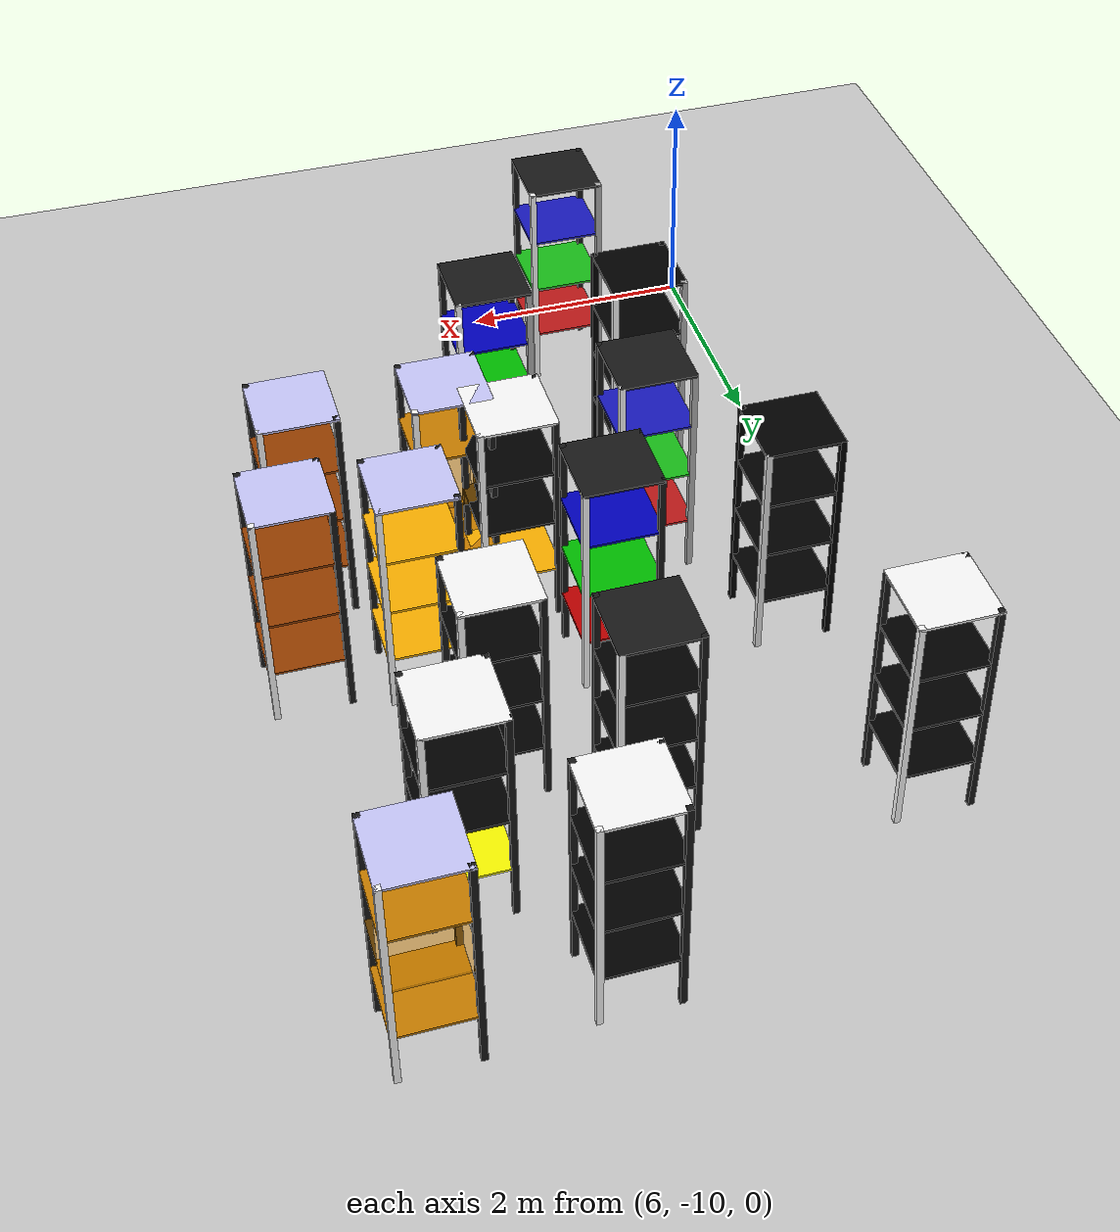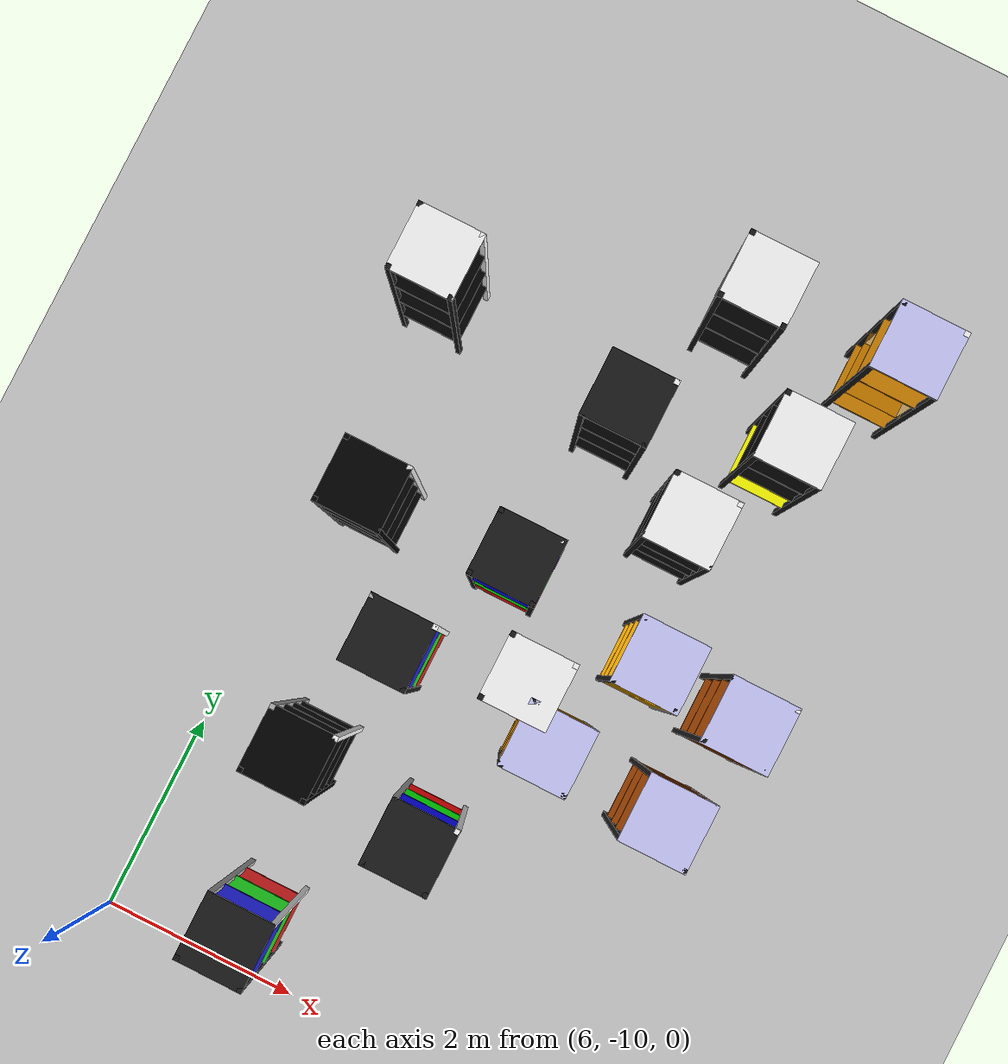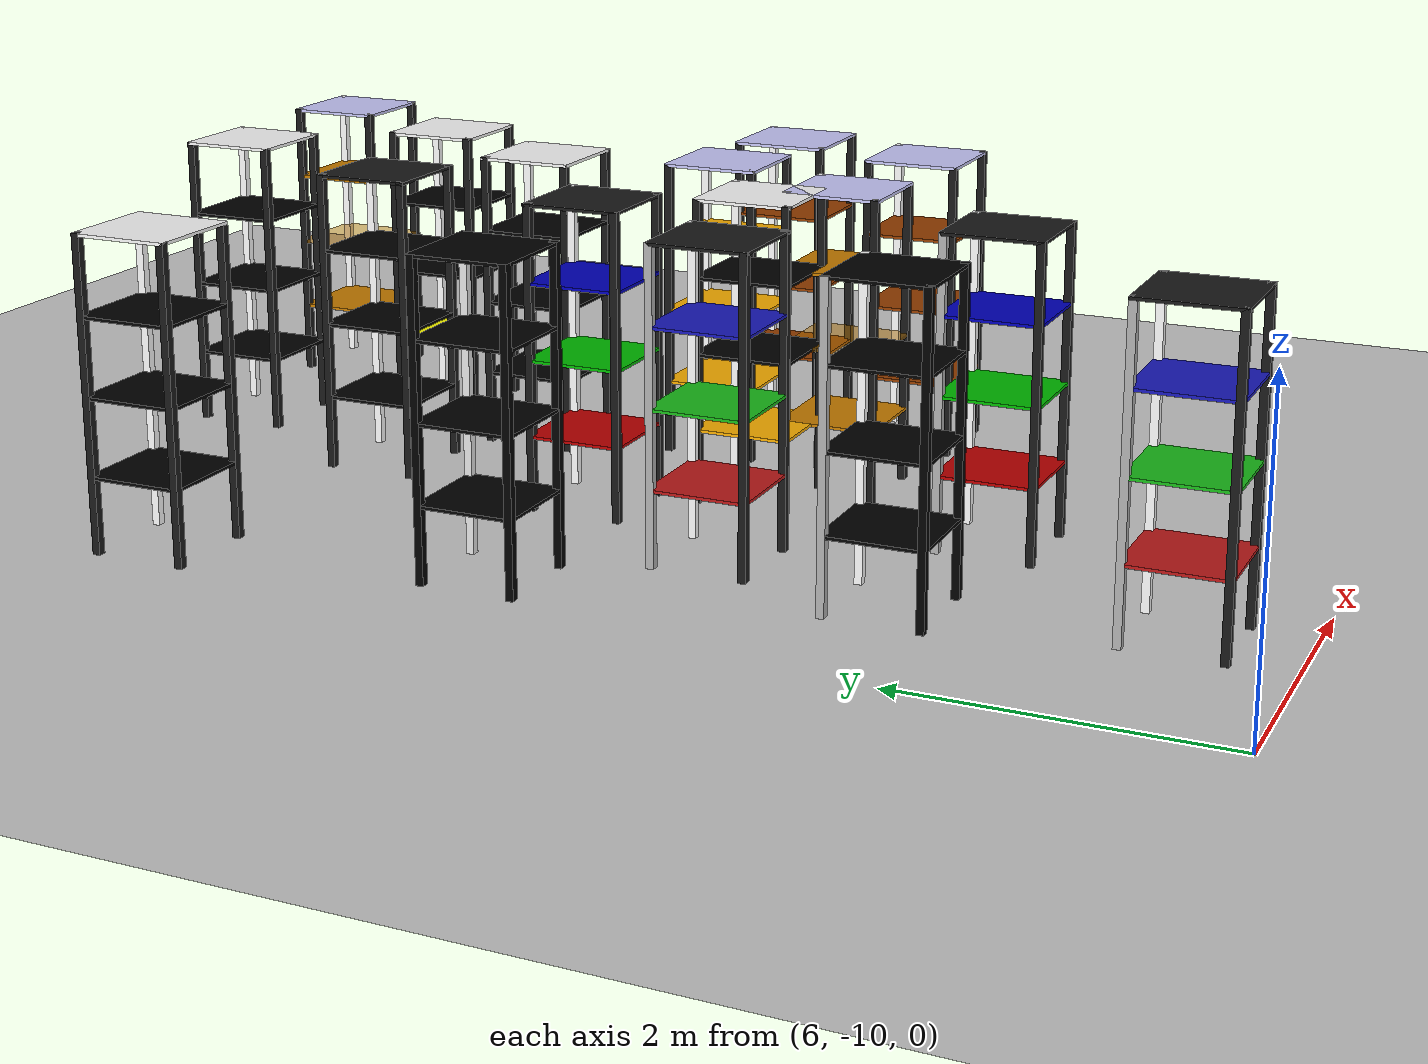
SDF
<sdf version="1.6">
 <world name="default">
  <model name="ground_plane">
   <static>1</static>
   <link name="link">
    <collision name="collision">
     <geometry><plane><normal>0 0 1</normal><size>50 50</size></plane></geometry>
     <surface><friction><ode><mu>100</mu><mu2>50</mu2></ode></friction></surface>
    </collision>
    <visual name="visual">
     <cast_shadows>0</cast_shadows>
     <geometry><plane><normal>0 0 1</normal><size>100 100</size></plane></geometry>
     <material>
      <script><uri>file://media/materials/scripts/gazebo.material</uri><name>Gazebo/Grey</name></script>
     </material>
    </visual>
    <velocity_decay><linear>0</linear><angular>0</angular></velocity_decay>
   </link>
  </model>
  <model name="warehouse_shelf_43">
   <static>1</static>
   <pose>6.62986 -5.31748 0 0 -0 0</pose>
   <link name="main_block">
    <pose>0 0 1.25 0 -0 0</pose>
    <collision name="collision"><geometry><box><size>0.65 0.65 1.5</size></box></geometry></collision>
   </link>
   <link name="leg_1">
    <pose>0.3 0.3 1 0 -0 0</pose>
    <collision name="collision"><geometry><box><size>0.05 0.05 2</size></box></geometry></collision>
    <visual name="visual">
     <geometry><box><size>0.05 0.05 2</size></box></geometry>
     <material><ambient>0.7 0.7 0.7 1</ambient><diffuse>0.9 0.9 0.9 1</diffuse></material>
    </visual>
   </link>
   <link name="leg_2">
    <pose>-0.3 0.3 1 0 -0 0</pose>
    <collision name="collision"><geometry><box><size>0.05 0.05 2</size></box></geometry></collision>
    <visual name="visual">
     <geometry><box><size>0.05 0.05 2</size></box></geometry>
     <material><ambient>0.7 0.7 0.7 1</ambient><diffuse>0 0 0 1</diffuse></material>
    </visual>
   </link>
   <link name="leg_3">
    <pose>-0.3 -0.3 1 0 -0 0</pose>
    <collision name="collision"><geometry><box><size>0.05 0.05 2</size></box></geometry></collision>
    <visual name="visual">
     <geometry><box><size>0.05 0.05 2</size></box></geometry>
     <material><ambient>0.1 0.1 0.1 1</ambient><diffuse>0 0 0 1</diffuse></material>
    </visual>
   </link>
   <link name="leg_4">
    <pose>0.3 -0.3 1 0 -0 0</pose>
    <collision name="collision"><geometry><box><size>0.05 0.05 2</size></box></geometry></collision>
    <visual name="visual">
     <geometry><box><size>0.05 0.05 2</size></box></geometry>
     <material><ambient>0.1 0.1 0.1 1</ambient><diffuse>0 0 0 1</diffuse></material>
    </visual>
   </link>
   <link name="shelf_0">
    <pose>0 0 0.49 0 -0 0</pose>
    <visual name="visual">
     <geometry><box><size>0.649 0.649 0.02</size></box></geometry>
     <material><ambient>0.75 0.1 0.1 1</ambient><diffuse>0 0 0 1</diffuse></material>
    </visual>
   </link>
   <link name="shelf_1">
    <pose>0 0 0.99 0 -0 0</pose>
    <visual name="visual">
     <geometry><box><size>0.649 0.649 0.02</size></box></geometry>
     <material><ambient>0.1 0.75 0.1 1</ambient><diffuse>0 0 0 1</diffuse></material>
    </visual>
   </link>
   <link name="shelf_2">
    <pose>0 0 1.49 0 -0 0</pose>
    <visual name="visual">
     <geometry><box><size>0.649 0.649 0.02</size></box></geometry>
     <material><ambient>0.1 0.1 0.75 1</ambient><diffuse>0 0 0 1</diffuse></material>
    </visual>
   </link>
   <link name="shelf_top">
    <pose>0 0 1.99 0 -0 0</pose>
    <visual name="visual">
     <geometry><box><size>0.649 0.649 0.02</size></box></geometry>
     <material><ambient>0.1 0.1 0.1 1</ambient><diffuse>0 0 0 1</diffuse></material>
    </visual>
   </link>
  </model>
  <model name="warehouse_shelf_44">
   <static>1</static>
   <pose>7.11852 -7.64911 0 0 -0 0</pose>
   <link name="main_block">
    <pose>0 0 1.25 0 -0 0</pose>
    <collision name="collision"><geometry><box><size>0.65 0.65 1.5</size></box></geometry></collision>
   </link>
   <link name="leg_1">
    <pose>0.3 0.3 1 0 -0 0</pose>
    <collision name="collision"><geometry><box><size>0.05 0.05 2</size></box></geometry></collision>
    <visual name="visual">
     <geometry><box><size>0.05 0.05 2</size></box></geometry>
     <material><ambient>0.7 0.7 0.7 1</ambient><diffuse>1 1 1 1</diffuse></material>
    </visual>
   </link>
   <link name="leg_2">
    <pose>-0.3 0.3 1 0 -0 0</pose>
    <collision name="collision"><geometry><box><size>0.05 0.05 2</size></box></geometry></collision>
    <visual name="visual">
     <geometry><box><size>0.05 0.05 2</size></box></geometry>
     <material><ambient>0.7 0.7 0.7 1</ambient></material>
    </visual>
   </link>
   <link name="leg_3">
    <pose>-0.3 -0.3 1 0 -0 0</pose>
    <collision name="collision"><geometry><box><size>0.05 0.05 2</size></box></geometry></collision>
    <visual name="visual">
     <geometry><box><size>0.05 0.05 2</size></box></geometry>
     <material><ambient>0.1 0.1 0.1 1</ambient><diffuse>0 0 0 1</diffuse></material>
    </visual>
   </link>
   <link name="leg_4">
    <pose>0.3 -0.3 1 0 -0 0</pose>
    <collision name="collision"><geometry><box><size>0.05 0.05 2</size></box></geometry></collision>
    <visual name="visual">
     <geometry><box><size>0.05 0.05 2</size></box></geometry>
     <material><ambient>0.1 0.1 0.1 1</ambient><diffuse>0 0 0 1</diffuse></material>
    </visual>
   </link>
   <link name="shelf_0">
    <pose>0 0 0.49 0 -0 0</pose>
    <visual name="visual">
     <geometry><box><size>0.649 0.649 0.02</size></box></geometry>
     <material><ambient>0.75 0.1 0.1 1</ambient><diffuse>0 0 0 1</diffuse></material>
    </visual>
   </link>
   <link name="shelf_1">
    <pose>0 0 0.99 0 -0 0</pose>
    <visual name="visual">
     <geometry><box><size>0.649 0.649 0.02</size></box></geometry>
     <material><ambient>0.1 0.75 0.1 1</ambient><diffuse>0 0 0 1</diffuse></material>
    </visual>
   </link>
   <link name="shelf_2">
    <pose>0 0 1.49 0 -0 0</pose>
    <visual name="visual">
     <geometry><box><size>0.649 0.649 0.02</size></box></geometry>
     <material><ambient>0.1 0.1 0.75 1</ambient><diffuse>0 0 0 1</diffuse></material>
    </visual>
   </link>
   <link name="shelf_top">
    <pose>0 0 1.99 0 -0 0</pose>
    <visual name="visual">
     <geometry><box><size>0.649 0.649 0.02</size></box></geometry>
     <material><ambient>0.1 0.1 0.1 1</ambient><diffuse>0 0 0 1</diffuse></material>
    </visual>
   </link>
  </model>
  <model name="warehouse_shelf_45">
   <static>1</static>
   <pose>7.44363 -6.42414 0 0 -0 0</pose>
   <link name="main_block">
    <pose>0 0 1.25 0 -0 0</pose>
    <collision name="collision"><geometry><box><size>0.65 0.65 1.5</size></box></geometry></collision>
   </link>
   <link name="leg_1">
    <pose>0.3 0.3 1 0 -0 0</pose>
    <collision name="collision"><geometry><box><size>0.05 0.05 2</size></box></geometry></collision>
    <visual name="visual">
     <geometry><box><size>0.05 0.05 2</size></box></geometry>
     <material><ambient>0.7 0.7 0.7 1</ambient><diffuse>1 1 1 1</diffuse></material>
    </visual>
   </link>
   <link name="leg_2">
    <pose>-0.3 0.3 1 0 -0 0</pose>
    <collision name="collision"><geometry><box><size>0.05 0.05 2</size></box></geometry></collision>
    <visual name="visual">
     <geometry><box><size>0.05 0.05 2</size></box></geometry>
     <material><ambient>0.7 0.7 0.7 1</ambient></material>
    </visual>
   </link>
   <link name="leg_3">
    <pose>-0.3 -0.3 1 0 -0 0</pose>
    <collision name="collision"><geometry><box><size>0.05 0.05 2</size></box></geometry></collision>
    <visual name="visual">
     <geometry><box><size>0.05 0.05 2</size></box></geometry>
     <material><ambient>0.1 0.1 0.1 1</ambient></material>
    </visual>
   </link>
   <link name="leg_4">
    <pose>0.3 -0.3 1 0 -0 0</pose>
    <collision name="collision"><geometry><box><size>0.05 0.05 2</size></box></geometry></collision>
    <visual name="visual">
     <geometry><box><size>0.05 0.05 2</size></box></geometry>
     <material><ambient>0.1 0.1 0.1 1</ambient></material>
    </visual>
   </link>
   <link name="shelf_0">
    <pose>0 0 0.49 0 -0 0</pose>
    <visual name="visual">
     <geometry><box><size>0.649 0.649 0.02</size></box></geometry>
     <material><ambient>0.75 0.1 0.1 1</ambient></material>
    </visual>
   </link>
   <link name="shelf_1">
    <pose>0 0 0.99 0 -0 0</pose>
    <visual name="visual">
     <geometry><box><size>0.649 0.649 0.02</size></box></geometry>
     <material><ambient>0.1 0.75 0.1 1</ambient></material>
    </visual>
   </link>
   <link name="shelf_2">
    <pose>0 0 1.49 0 -0 0</pose>
    <visual name="visual">
     <geometry><box><size>0.649 0.649 0.02</size></box></geometry>
     <material><ambient>0.1 0.1 0.75 1</ambient></material>
    </visual>
   </link>
   <link name="shelf_top">
    <pose>0 0 1.99 0 -0 0</pose>
    <visual name="visual">
     <geometry><box><size>0.65 0.65 0.02</size></box></geometry>
     <material><ambient>0.1 0.1 0.1 1</ambient></material>
    </visual>
   </link>
  </model>
  <model name="warehouse_shelf_46">
   <static>1</static>
   <pose>7.36958 -9.30303 0 0 -0 0</pose>
   <link name="main_block">
    <pose>0 0 1.25 0 -0 0</pose>
    <collision name="collision"><geometry><box><size>0.65 0.65 1.5</size></box></geometry></collision>
   </link>
   <link name="leg_1">
    <pose>0.3 0.3 1 0 -0 0</pose>
    <collision name="collision"><geometry><box><size>0.05 0.05 2</size></box></geometry></collision>
    <visual name="visual">
     <geometry><box><size>0.05 0.05 2</size></box></geometry>
     <material><ambient>0.7 0.7 0.7 1</ambient><diffuse>1 1 1 1</diffuse></material>
    </visual>
   </link>
   <link name="leg_2">
    <pose>-0.3 0.3 1 0 -0 0</pose>
    <collision name="collision"><geometry><box><size>0.05 0.05 2</size></box></geometry></collision>
    <visual name="visual">
     <geometry><box><size>0.05 0.05 2</size></box></geometry>
     <material><ambient>0.7 0.7 0.7 1</ambient></material>
    </visual>
   </link>
   <link name="leg_3">
    <pose>-0.3 -0.3 1 0 -0 0</pose>
    <collision name="collision"><geometry><box><size>0.05 0.05 2</size></box></geometry></collision>
    <visual name="visual">
     <geometry><box><size>0.05 0.05 2</size></box></geometry>
     <material><ambient>0.1 0.1 0.1 1</ambient></material>
    </visual>
   </link>
   <link name="leg_4">
    <pose>0.3 -0.3 1 0 -0 0</pose>
    <collision name="collision"><geometry><box><size>0.05 0.05 2</size></box></geometry></collision>
    <visual name="visual">
     <geometry><box><size>0.05 0.05 2</size></box></geometry>
     <material><ambient>0.1 0.1 0.1 1</ambient></material>
    </visual>
   </link>
   <link name="shelf_0">
    <pose>0 0 0.49 0 -0 0</pose>
    <visual name="visual">
     <geometry><box><size>0.649 0.649 0.02</size></box></geometry>
     <material><ambient>0.75 0.1 0.1 1</ambient></material>
    </visual>
   </link>
   <link name="shelf_1">
    <pose>0 0 0.99 0 -0 0</pose>
    <visual name="visual">
     <geometry><box><size>0.649 0.649 0.02</size></box></geometry>
     <material><ambient>0.1 0.75 0.1 1</ambient></material>
    </visual>
   </link>
   <link name="shelf_2">
    <pose>0 0 1.49 0 -0 0</pose>
    <visual name="visual">
     <geometry><box><size>0.649 0.649 0.02</size></box></geometry>
     <material><ambient>0.1 0.1 0.75 1</ambient></material>
    </visual>
   </link>
   <link name="shelf_top">
    <pose>0 0 1.99 0 -0 0</pose>
    <visual name="visual">
     <geometry><box><size>0.65 0.65 0.02</size></box></geometry>
     <material><ambient>0.1 0.1 0.1 1</ambient></material>
    </visual>
   </link>
  </model>
  <model name="warehouse_shelf_47">
   <static>1</static>
   <pose>8.40093 -7.88247 0 0 -0 0</pose>
   <link name="main_block">
    <pose>0 0 1.25 0 -0 0</pose>
    <collision name="collision"><geometry><box><size>0.65 0.65 1.5</size></box></geometry></collision>
   </link>
   <link name="leg_1">
    <pose>0.3 0.3 1 0 -0 0</pose>
    <collision name="collision"><geometry><box><size>0.05 0.05 2</size></box></geometry></collision>
    <visual name="visual">
     <geometry><box><size>0.05 0.05 2</size></box></geometry>
     <material><ambient>0.7 0.7 0.7 1</ambient><diffuse>1 1 1 1</diffuse></material>
    </visual>
   </link>
   <link name="leg_2">
    <pose>-0.3 0.3 1 0 -0 0</pose>
    <collision name="collision"><geometry><box><size>0.05 0.05 2</size></box></geometry></collision>
    <visual name="visual">
     <geometry><box><size>0.05 0.05 2</size></box></geometry>
     <material><ambient>0.7 0.7 0.7 1</ambient></material>
    </visual>
   </link>
   <link name="leg_3">
    <pose>-0.3 -0.3 1 0 -0 0</pose>
    <collision name="collision"><geometry><box><size>0.05 0.05 2</size></box></geometry></collision>
    <visual name="visual">
     <geometry><box><size>0.05 0.05 2</size></box></geometry>
     <material><ambient>0.1 0.1 0.1 1</ambient></material>
    </visual>
   </link>
   <link name="leg_4">
    <pose>0.3 -0.3 1 0 -0 0</pose>
    <collision name="collision"><geometry><box><size>0.05 0.05 2</size></box></geometry></collision>
    <visual name="visual">
     <geometry><box><size>0.05 0.05 2</size></box></geometry>
     <material><ambient>0.1 0.1 0.1 1</ambient></material>
    </visual>
   </link>
   <link name="shelf_0">
    <pose>0 0 0.49 0 -0 0</pose>
    <visual name="visual">
     <geometry><box><size>0.649 0.649 0.02</size></box></geometry>
     <material><ambient>0.75 0 0 1</ambient></material>
    </visual>
   </link>
   <link name="shelf_1">
    <pose>0 0 0.99 0 -0 0</pose>
    <visual name="visual">
     <geometry><box><size>0.649 0.649 0.02</size></box></geometry>
     <material><ambient>0 0.75 0 1</ambient></material>
    </visual>
   </link>
   <link name="shelf_2">
    <pose>0 0 1.49 0 -0 0</pose>
    <visual name="visual">
     <geometry><box><size>0.649 0.649 0.02</size></box></geometry>
     <material><ambient>0 0 0.75 1</ambient></material>
    </visual>
   </link>
   <link name="shelf_top">
    <pose>0 0 1.99 0 -0 0</pose>
    <visual name="visual">
     <geometry><box><size>0.65 0.65 0.02</size></box></geometry>
     <material><ambient>0.1 0.1 0.1 1</ambient></material>
    </visual>
   </link>
  </model>
  <model name="warehouse_shelf_48">
   <static>1</static>
   <pose>8.08907 -5.27615 0 0 -0 0</pose>
   <link name="main_block">
    <pose>0 0 1.25 0 -0 0</pose>
    <collision name="collision"><geometry><box><size>0.65 0.65 1.5</size></box></geometry></collision>
   </link>
   <link name="leg_1">
    <pose>0.3 0.3 1 0 -0 0</pose>
    <collision name="collision"><geometry><box><size>0.05 0.05 2</size></box></geometry></collision>
    <visual name="visual">
     <geometry><box><size>0.05 0.05 2</size></box></geometry>
     <material><ambient>0.1 0.1 0.1 1</ambient><diffuse>1 1 1 1</diffuse></material>
    </visual>
   </link>
   <link name="leg_2">
    <pose>-0.3 0.3 1 0 -0 0</pose>
    <collision name="collision"><geometry><box><size>0.05 0.05 2</size></box></geometry></collision>
    <visual name="visual">
     <geometry><box><size>0.05 0.05 2</size></box></geometry>
     <material><ambient>0.1 0.1 0.1 1</ambient></material>
    </visual>
   </link>
   <link name="leg_3">
    <pose>-0.3 -0.3 1 0 -0 0</pose>
    <collision name="collision"><geometry><box><size>0.05 0.05 2</size></box></geometry></collision>
    <visual name="visual">
     <geometry><box><size>0.05 0.05 2</size></box></geometry>
     <material><ambient>0.1 0.1 0.1 1</ambient></material>
    </visual>
   </link>
   <link name="leg_4">
    <pose>0.3 -0.3 1 0 -0 0</pose>
    <collision name="collision"><geometry><box><size>0.05 0.05 2</size></box></geometry></collision>
    <visual name="visual">
     <geometry><box><size>0.05 0.05 2</size></box></geometry>
     <material><ambient>0.1 0.1 0.1 1</ambient></material>
    </visual>
   </link>
   <link name="shelf_0">
    <pose>0 0 0.49 0 -0 0</pose>
    <visual name="visual">
     <geometry><box><size>0.649 0.649 0.02</size></box></geometry>
     <material><ambient>0.75 0 0 1</ambient></material>
    </visual>
   </link>
   <link name="shelf_1">
    <pose>0 0 0.99 0 -0 0</pose>
    <visual name="visual">
     <geometry><box><size>0.649 0.649 0.02</size></box></geometry>
     <material><ambient>0 0.75 0 1</ambient></material>
    </visual>
   </link>
   <link name="shelf_2">
    <pose>0 0 1.49 0 -0 0</pose>
    <visual name="visual">
     <geometry><box><size>0.649 0.649 0.02</size></box></geometry>
     <material><ambient>0 0 0.75 1</ambient></material>
    </visual>
   </link>
   <link name="shelf_top">
    <pose>0 0 1.99 0 -0 0</pose>
    <visual name="visual">
     <geometry><box><size>0.65 0.65 0.02</size></box></geometry>
     <material><ambient>0.1 0.1 0.1 1</ambient></material>
    </visual>
   </link>
  </model>
  <model name="warehouse_shelf_49">
   <static>1</static>
   <pose>8.32542 -3.6249 0 0 -0 0</pose>
   <link name="main_block">
    <pose>0 0 1.25 0 -0 0</pose>
    <collision name="collision"><geometry><box><size>0.65 0.65 1.5</size></box></geometry></collision>
   </link>
   <link name="leg_1">
    <pose>0.3 0.3 1 0 -0 0</pose>
    <collision name="collision"><geometry><box><size>0.05 0.05 2</size></box></geometry></collision>
    <visual name="visual">
     <geometry><box><size>0.05 0.05 2</size></box></geometry>
     <material><ambient>0.1 0.1 0.1 1</ambient><diffuse>1 1 1 1</diffuse></material>
    </visual>
   </link>
   <link name="leg_2">
    <pose>-0.3 0.3 1 0 -0 0</pose>
    <collision name="collision"><geometry><box><size>0.05 0.05 2</size></box></geometry></collision>
    <visual name="visual">
     <geometry><box><size>0.05 0.05 2</size></box></geometry>
     <material><ambient>0.1 0.1 0.1 1</ambient></material>
    </visual>
   </link>
   <link name="leg_3">
    <pose>-0.3 -0.3 1 0 -0 0</pose>
    <collision name="collision"><geometry><box><size>0.05 0.05 2</size></box></geometry></collision>
    <visual name="visual">
     <geometry><box><size>0.05 0.05 2</size></box></geometry>
     <material><ambient>0.1 0.1 0.1 1</ambient></material>
    </visual>
   </link>
   <link name="leg_4">
    <pose>0.3 -0.3 1 0 -0 0</pose>
    <collision name="collision"><geometry><box><size>0.05 0.05 2</size></box></geometry></collision>
    <visual name="visual">
     <geometry><box><size>0.05 0.05 2</size></box></geometry>
     <material><ambient>0.1 0.1 0.1 1</ambient></material>
    </visual>
   </link>
   <link name="shelf_0">
    <pose>0 0 0.49 0 -0 0</pose>
    <visual name="visual">
     <geometry><box><size>0.649 0.649 0.02</size></box></geometry>
     <material><ambient>0 0 0 1</ambient><diffuse>0 0 0 1</diffuse><emissive>0 1 0 1</emissive></material>
    </visual>
   </link>
   <link name="shelf_1">
    <pose>0 0 0.99 0 -0 0</pose>
    <visual name="visual">
     <geometry><box><size>0.649 0.649 0.02</size></box></geometry>
     <material><ambient>0 0 0 1</ambient><diffuse>0 0 0 1</diffuse><emissive>0 1 0 1</emissive></material>
    </visual>
   </link>
   <link name="shelf_2">
    <pose>0 0 1.49 0 -0 0</pose>
    <visual name="visual">
     <geometry><box><size>0.649 0.649 0.02</size></box></geometry>
     <material><ambient>0 0 0 1</ambient><diffuse>0 0 0 1</diffuse><emissive>0 1 0 1</emissive></material>
    </visual>
   </link>
   <link name="shelf_top">
    <pose>0 0 1.99 0 -0 0</pose>
    <visual name="visual">
     <geometry><box><size>0.65 0.65 0.02</size></box></geometry>
     <material><ambient>0.1 0.1 0.1 1</ambient></material>
    </visual>
   </link>
  </model>
  <model name="warehouse_shelf_50">
   <static>1</static>
   <pose>9.28059 -4.31278 0 0 -0 0</pose>
   <link name="main_block">
    <pose>0 0 1.25 0 -0 0</pose>
    <collision name="collision"><geometry><box><size>0.65 0.65 1.5</size></box></geometry></collision>
   </link>
   <link name="leg_1">
    <pose>0.3 0.3 1 0 -0 0</pose>
    <collision name="collision"><geometry><box><size>0.05 0.05 2</size></box></geometry></collision>
    <visual name="visual">
     <geometry><box><size>0.05 0.05 2</size></box></geometry>
     <material><ambient>0.1 0.1 0.1 1</ambient><diffuse>1 1 1 1</diffuse></material>
    </visual>
   </link>
   <link name="leg_2">
    <pose>-0.3 0.3 1 0 -0 0</pose>
    <collision name="collision"><geometry><box><size>0.05 0.05 2</size></box></geometry></collision>
    <visual name="visual">
     <geometry><box><size>0.05 0.05 2</size></box></geometry>
     <material><ambient>0.1 0.1 0.1 1</ambient></material>
    </visual>
   </link>
   <link name="leg_3">
    <pose>-0.3 -0.3 1 0 -0 0</pose>
    <collision name="collision"><geometry><box><size>0.05 0.05 2</size></box></geometry></collision>
    <visual name="visual">
     <geometry><box><size>0.05 0.05 2</size></box></geometry>
     <material><ambient>0.1 0.1 0.1 1</ambient></material>
    </visual>
   </link>
   <link name="leg_4">
    <pose>0.3 -0.3 1 0 -0 0</pose>
    <collision name="collision"><geometry><box><size>0.05 0.05 2</size></box></geometry></collision>
    <visual name="visual">
     <geometry><box><size>0.05 0.05 2</size></box></geometry>
     <material><ambient>0.1 0.1 0.1 1</ambient></material>
    </visual>
   </link>
   <link name="shelf_0">
    <pose>0 0 0.49 0 -0 0</pose>
    <visual name="visual">
     <geometry><box><size>0.649 0.649 0.02</size></box></geometry>
     <material><ambient>0 0 0 1</ambient><diffuse>0 0 0 1</diffuse><emissive>0 1 0 1</emissive></material>
    </visual>
   </link>
   <link name="shelf_1">
    <pose>0 0 0.99 0 -0 0</pose>
    <visual name="visual">
     <geometry><box><size>0.649 0.649 0.02</size></box></geometry>
     <material><ambient>0 0 0 1</ambient><diffuse>0 0 0 1</diffuse><emissive>0 1 0 1</emissive></material>
    </visual>
   </link>
   <link name="shelf_2">
    <pose>0 0 1.49 0 -0 0</pose>
    <visual name="visual">
     <geometry><box><size>0.649 0.649 0.02</size></box></geometry>
     <material><ambient>0 0 0 1</ambient><diffuse>0 0 0 1</diffuse><emissive>0 1 0 1</emissive></material>
    </visual>
   </link>
   <link name="shelf_top">
    <pose>0 0 1.99 0 -0 0</pose>
    <visual name="visual">
     <geometry><box><size>0.65 0.65 0.02</size></box></geometry>
     <material><ambient>0.5 0.5 0.5 1</ambient><diffuse>1 1 1 1</diffuse><emissive>0 0 0 1</emissive></material>
    </visual>
   </link>
  </model>
  <model name="warehouse_shelf_51">
   <static>1</static>
   <pose>8.91973 -2.18442 0 0 -0 0</pose>
   <link name="main_block">
    <pose>0 0 1.25 0 -0 0</pose>
    <collision name="collision"><geometry><box><size>0.65 0.65 1.5</size></box></geometry></collision>
   </link>
   <link name="leg_1">
    <pose>0.3 0.3 1 0 -0 0</pose>
    <collision name="collision"><geometry><box><size>0.05 0.05 2</size></box></geometry></collision>
    <visual name="visual">
     <geometry><box><size>0.05 0.05 2</size></box></geometry>
     <material><ambient>0.1 0.1 0.1 1</ambient><diffuse>1 1 1 1</diffuse></material>
    </visual>
   </link>
   <link name="leg_2">
    <pose>-0.3 0.3 1 0 -0 0</pose>
    <collision name="collision"><geometry><box><size>0.05 0.05 2</size></box></geometry></collision>
    <visual name="visual">
     <geometry><box><size>0.05 0.05 2</size></box></geometry>
     <material><ambient>0.1 0.1 0.1 1</ambient></material>
    </visual>
   </link>
   <link name="leg_3">
    <pose>-0.3 -0.3 1 0 -0 0</pose>
    <collision name="collision"><geometry><box><size>0.05 0.05 2</size></box></geometry></collision>
    <visual name="visual">
     <geometry><box><size>0.05 0.05 2</size></box></geometry>
     <material><ambient>0.1 0.1 0.1 1</ambient></material>
    </visual>
   </link>
   <link name="leg_4">
    <pose>0.3 -0.3 1 0 -0 0</pose>
    <collision name="collision"><geometry><box><size>0.05 0.05 2</size></box></geometry></collision>
    <visual name="visual">
     <geometry><box><size>0.05 0.05 2</size></box></geometry>
     <material><ambient>0.1 0.1 0.1 1</ambient></material>
    </visual>
   </link>
   <link name="shelf_0">
    <pose>0 0 0.49 0 -0 0</pose>
    <visual name="visual">
     <geometry><box><size>0.649 0.649 0.02</size></box></geometry>
     <material><ambient>0 0 0 1</ambient><diffuse>0 0 0 1</diffuse></material>
    </visual>
   </link>
   <link name="shelf_1">
    <pose>0 0 0.99 0 -0 0</pose>
    <visual name="visual">
     <geometry><box><size>0.649 0.649 0.02</size></box></geometry>
     <material><ambient>0 0 0 1</ambient><diffuse>0 0 0 1</diffuse></material>
    </visual>
   </link>
   <link name="shelf_2">
    <pose>0 0 1.49 0 -0 0</pose>
    <visual name="visual">
     <geometry><box><size>0.649 0.649 0.02</size></box></geometry>
     <material><ambient>0 0 0 1</ambient><diffuse>0 0 0 1</diffuse></material>
    </visual>
   </link>
   <link name="shelf_top">
    <pose>0 0 1.99 0 -0 0</pose>
    <visual name="visual">
     <geometry><box><size>0.65 0.65 0.02</size></box></geometry>
     <material><ambient>0.5 0.5 0.5 1</ambient><diffuse>1 1 1 1</diffuse></material>
    </visual>
   </link>
  </model>
  <model name="warehouse_shelf_52">
   <static>1</static>
   <pose>6.27688 -3.25874 0 0 -0 0</pose>
   <link name="main_block">
    <pose>0 0 1.25 0 -0 0</pose>
    <collision name="collision"><geometry><box><size>0.65 0.65 1.5</size></box></geometry></collision>
   </link>
   <link name="leg_1">
    <pose>0.3 0.3 1 0 -0 0</pose>
    <collision name="collision"><geometry><box><size>0.05 0.05 2</size></box></geometry></collision>
    <visual name="visual">
     <geometry><box><size>0.05 0.05 2</size></box></geometry>
     <material><ambient>0.1 0.1 0.1 1</ambient><diffuse>1 1 1 1</diffuse></material>
    </visual>
   </link>
   <link name="leg_2">
    <pose>-0.3 0.3 1 0 -0 0</pose>
    <collision name="collision"><geometry><box><size>0.05 0.05 2</size></box></geometry></collision>
    <visual name="visual">
     <geometry><box><size>0.05 0.05 2</size></box></geometry>
     <material><ambient>0.1 0.1 0.1 1</ambient></material>
    </visual>
   </link>
   <link name="leg_3">
    <pose>-0.3 -0.3 1 0 -0 0</pose>
    <collision name="collision"><geometry><box><size>0.05 0.05 2</size></box></geometry></collision>
    <visual name="visual">
     <geometry><box><size>0.05 0.05 2</size></box></geometry>
     <material><ambient>0.1 0.1 0.1 1</ambient></material>
    </visual>
   </link>
   <link name="leg_4">
    <pose>0.3 -0.3 1 0 -0 0</pose>
    <collision name="collision"><geometry><box><size>0.05 0.05 2</size></box></geometry></collision>
    <visual name="visual">
     <geometry><box><size>0.05 0.05 2</size></box></geometry>
     <material><ambient>0.1 0.1 0.1 1</ambient></material>
    </visual>
   </link>
   <link name="shelf_0">
    <pose>0 0 0.49 0 -0 0</pose>
    <visual name="visual">
     <geometry><box><size>0.649 0.649 0.02</size></box></geometry>
     <material><ambient>0 0 0 1</ambient><diffuse>0 0 0 1</diffuse></material>
    </visual>
   </link>
   <link name="shelf_1">
    <pose>0 0 0.99 0 -0 0</pose>
    <visual name="visual">
     <geometry><box><size>0.649 0.649 0.02</size></box></geometry>
     <material><ambient>0 0 0 1</ambient><diffuse>0 0 0 1</diffuse></material>
    </visual>
   </link>
   <link name="shelf_2">
    <pose>0 0 1.49 0 -0 0</pose>
    <visual name="visual">
     <geometry><box><size>0.649 0.649 0.02</size></box></geometry>
     <material><ambient>0 0 0 1</ambient><diffuse>0 0 0 1</diffuse></material>
    </visual>
   </link>
   <link name="shelf_top">
    <pose>0 0 1.99 0 -0 0</pose>
    <visual name="visual">
     <geometry><box><size>0.65 0.65 0.02</size></box></geometry>
     <material><ambient>0.5 0.5 0.5 1</ambient><diffuse>1 1 1 1</diffuse></material>
    </visual>
   </link>
  </model>
  <model name="warehouse_shelf_53">
   <static>1</static>
   <pose>9.81302 -3.26866 0 0 -0 0</pose>
   <link name="main_block">
    <pose>0 0 1.25 0 -0 0</pose>
    <collision name="collision"><geometry><box><size>0.65 0.65 1.5</size></box></geometry></collision>
   </link>
   <link name="leg_1">
    <pose>0.3 0.3 1 0 -0 0</pose>
    <collision name="collision"><geometry><box><size>0.05 0.05 2</size></box></geometry></collision>
    <visual name="visual">
     <geometry><box><size>0.05 0.05 2</size></box></geometry>
     <material><ambient>0.1 0.1 0.1 1</ambient><diffuse>1 1 1 1</diffuse></material>
    </visual>
   </link>
   <link name="leg_2">
    <pose>-0.3 0.3 1 0 -0 0</pose>
    <collision name="collision"><geometry><box><size>0.05 0.05 2</size></box></geometry></collision>
    <visual name="visual">
     <geometry><box><size>0.05 0.05 2</size></box></geometry>
     <material><ambient>0.1 0.1 0.1 1</ambient></material>
    </visual>
   </link>
   <link name="leg_3">
    <pose>-0.3 -0.3 1 0 -0 0</pose>
    <collision name="collision"><geometry><box><size>0.05 0.05 2</size></box></geometry></collision>
    <visual name="visual">
     <geometry><box><size>0.05 0.05 2</size></box></geometry>
     <material><ambient>0.1 0.1 0.1 1</ambient></material>
    </visual>
   </link>
   <link name="leg_4">
    <pose>0.3 -0.3 1 0 -0 0</pose>
    <collision name="collision"><geometry><box><size>0.05 0.05 2</size></box></geometry></collision>
    <visual name="visual">
     <geometry><box><size>0.05 0.05 2</size></box></geometry>
     <material><ambient>0.1 0.1 0.1 1</ambient></material>
    </visual>
   </link>
   <link name="shelf_0">
    <pose>0 0 0.49 0 -0 0</pose>
    <visual name="visual">
     <geometry><box><size>0.649 0.649 0.02</size></box></geometry>
     <material><ambient>1 1 0 1</ambient><diffuse>1 1 0 1</diffuse></material>
    </visual>
   </link>
   <link name="shelf_1">
    <pose>0 0 0.99 0 -0 0</pose>
    <visual name="visual">
     <geometry><box><size>0.649 0.649 0.02</size></box></geometry>
     <material><ambient>0 0 0 1</ambient><diffuse>0 0 0 1</diffuse></material>
    </visual>
   </link>
   <link name="shelf_2">
    <pose>0 0 1.49 0 -0 0</pose>
    <visual name="visual">
     <geometry><box><size>0.649 0.649 0.02</size></box></geometry>
     <material><ambient>0 0 0 1</ambient><diffuse>0 0 0 1</diffuse></material>
    </visual>
   </link>
   <link name="shelf_top">
    <pose>0 0 1.99 0 -0 0</pose>
    <visual name="visual">
     <geometry><box><size>0.65 0.65 0.02</size></box></geometry>
     <material><ambient>0.5 0.5 0.5 1</ambient><diffuse>1 1 1 1</diffuse></material>
    </visual>
   </link>
  </model>
  <model name="warehouse_shelf_54">
   <static>1</static>
   <pose>8.65731 -6.17429 0 0 -0 0</pose>
   <link name="main_block">
    <pose>0 0 1.25 0 -0 0</pose>
    <collision name="collision"><geometry><box><size>0.65 0.65 1.5</size></box></geometry></collision>
   </link>
   <link name="leg_1">
    <pose>0.3 0.3 1 0 -0 0</pose>
    <collision name="collision"><geometry><box><size>0.05 0.05 2</size></box></geometry></collision>
    <visual name="visual">
     <geometry><box><size>0.05 0.05 2</size></box></geometry>
     <material><ambient>0.1 0.1 0.1 1</ambient><diffuse>1 1 1 1</diffuse></material>
    </visual>
   </link>
   <link name="leg_2">
    <pose>-0.3 0.3 1 0 -0 0</pose>
    <collision name="collision"><geometry><box><size>0.05 0.05 2</size></box></geometry></collision>
    <visual name="visual">
     <geometry><box><size>0.05 0.05 2</size></box></geometry>
     <material><ambient>0.1 0.1 0.1 1</ambient></material>
    </visual>
   </link>
   <link name="leg_3">
    <pose>-0.3 -0.3 1 0 -0 0</pose>
    <collision name="collision"><geometry><box><size>0.05 0.05 2</size></box></geometry></collision>
    <visual name="visual">
     <geometry><box><size>0.05 0.05 2</size></box></geometry>
     <material><ambient>0.1 0.1 0.1 1</ambient></material>
    </visual>
   </link>
   <link name="leg_4">
    <pose>0.3 -0.3 1 0 -0 0</pose>
    <collision name="collision"><geometry><box><size>0.05 0.05 2</size></box></geometry></collision>
    <visual name="visual">
     <geometry><box><size>0.05 0.05 2</size></box></geometry>
     <material><ambient>0.1 0.1 0.1 1</ambient></material>
    </visual>
   </link>
   <link name="shelf_0">
    <pose>0 0 0.49 0 -0 0</pose>
    <visual name="visual">
     <geometry><box><size>0.649 0.649 0.02</size></box></geometry>
     <material><ambient>1 0.7 0 1</ambient><diffuse>1 0.7 0 1</diffuse></material>
    </visual>
   </link>
   <link name="shelf_1">
    <pose>0 0 0.99 0 -0 0</pose>
    <visual name="visual">
     <geometry><box><size>0.649 0.649 0.02</size></box></geometry>
     <material><ambient>0 0 0 1</ambient><diffuse>0 0 0 1</diffuse></material>
    </visual>
   </link>
   <link name="shelf_2">
    <pose>0 0 1.49 0 -0 0</pose>
    <visual name="visual">
     <geometry><box><size>0.649 0.649 0.02</size></box></geometry>
     <material><ambient>0 0 0 1</ambient><diffuse>0 0 0 1</diffuse></material>
    </visual>
   </link>
   <link name="shelf_top">
    <pose>0 0 1.99 0 -0 0</pose>
    <visual name="visual">
     <geometry><box><size>0.65 0.65 0.02</size></box></geometry>
     <material><ambient>0.5 0.5 0.5 1</ambient><diffuse>1 1 1 1</diffuse></material>
    </visual>
   </link>
  </model>
  <model name="warehouse_shelf_55">
   <static>1</static>
   <pose>9.591 -5.53617 0 0 -0 0</pose>
   <link name="main_block">
    <pose>0 0 1.25 0 -0 0</pose>
    <collision name="collision"><geometry><box><size>0.65 0.65 1.5</size></box></geometry></collision>
   </link>
   <link name="leg_1">
    <pose>0.3 0.3 1 0 -0 0</pose>
    <collision name="collision"><geometry><box><size>0.05 0.05 2</size></box></geometry></collision>
    <visual name="visual">
     <geometry><box><size>0.05 0.05 2</size></box></geometry>
     <material><ambient>0.1 0.1 0.1 1</ambient><diffuse>1 1 1 1</diffuse></material>
    </visual>
   </link>
   <link name="leg_2">
    <pose>-0.3 0.3 1 0 -0 0</pose>
    <collision name="collision"><geometry><box><size>0.05 0.05 2</size></box></geometry></collision>
    <visual name="visual">
     <geometry><box><size>0.05 0.05 2</size></box></geometry>
     <material><ambient>0.1 0.1 0.1 1</ambient></material>
    </visual>
   </link>
   <link name="leg_3">
    <pose>-0.3 -0.3 1 0 -0 0</pose>
    <collision name="collision"><geometry><box><size>0.05 0.05 2</size></box></geometry></collision>
    <visual name="visual">
     <geometry><box><size>0.05 0.05 2</size></box></geometry>
     <material><ambient>0.1 0.1 0.1 1</ambient></material>
    </visual>
   </link>
   <link name="leg_4">
    <pose>0.3 -0.3 1 0 -0 0</pose>
    <collision name="collision"><geometry><box><size>0.05 0.05 2</size></box></geometry></collision>
    <visual name="visual">
     <geometry><box><size>0.05 0.05 2</size></box></geometry>
     <material><ambient>0.1 0.1 0.1 1</ambient></material>
    </visual>
   </link>
   <link name="shelf_0">
    <pose>0 0 0.49 0 -0 0</pose>
    <visual name="visual">
     <geometry><box><size>0.649 0.649 0.02</size></box></geometry>
     <material><ambient>1 0.7 0 1</ambient><diffuse>1 0.7 0 1</diffuse></material>
    </visual>
   </link>
   <link name="shelf_1">
    <pose>0 0 0.99 0 -0 0</pose>
    <visual name="visual">
     <geometry><box><size>0.649 0.649 0.02</size></box></geometry>
     <material><ambient>1 0.7 0 1</ambient><diffuse>1 0.7 0 1</diffuse></material>
    </visual>
   </link>
   <link name="shelf_2">
    <pose>0 0 1.49 0 -0 0</pose>
    <visual name="visual">
     <geometry><box><size>0.649 0.649 0.02</size></box></geometry>
     <material><ambient>1 0.7 0 1</ambient><diffuse>1 0.7 0 1</diffuse></material>
    </visual>
   </link>
   <link name="shelf_top">
    <pose>0 0 1.99 0 -0 0</pose>
    <visual name="visual">
     <geometry><box><size>0.65 0.65 0.02</size></box></geometry>
     <material><ambient>0.8 0.8 1 1</ambient><diffuse>0.8 0.8 1 1</diffuse></material>
    </visual>
   </link>
  </model>
  <model name="warehouse_shelf_57">
   <static>1</static>
   <pose>9.06466 -6.60433 0 0 -0 0</pose>
   <link name="main_block">
    <pose>0 0 1.25 0 -0 0</pose>
    <collision name="collision"><geometry><box><size>0.65 0.65 1.5</size></box></geometry></collision>
   </link>
   <link name="leg_1">
    <pose>0.3 0.3 1 0 -0 0</pose>
    <collision name="collision"><geometry><box><size>0.05 0.05 2</size></box></geometry></collision>
    <visual name="visual">
     <geometry><box><size>0.05 0.05 2</size></box></geometry>
     <material><ambient>0.1 0.1 0.1 1</ambient><diffuse>1 1 1 1</diffuse></material>
    </visual>
   </link>
   <link name="leg_2">
    <pose>-0.3 0.3 1 0 -0 0</pose>
    <collision name="collision"><geometry><box><size>0.05 0.05 2</size></box></geometry></collision>
    <visual name="visual">
     <geometry><box><size>0.05 0.05 2</size></box></geometry>
     <material><ambient>0.1 0.1 0.1 1</ambient></material>
    </visual>
   </link>
   <link name="leg_3">
    <pose>-0.3 -0.3 1 0 -0 0</pose>
    <collision name="collision"><geometry><box><size>0.05 0.05 2</size></box></geometry></collision>
    <visual name="visual">
     <geometry><box><size>0.05 0.05 2</size></box></geometry>
     <material><ambient>0.1 0.1 0.1 1</ambient></material>
    </visual>
   </link>
   <link name="leg_4">
    <pose>0.3 -0.3 1 0 -0 0</pose>
    <collision name="collision"><geometry><box><size>0.05 0.05 2</size></box></geometry></collision>
    <visual name="visual">
     <geometry><box><size>0.05 0.05 2</size></box></geometry>
     <material><ambient>0.1 0.1 0.1 1</ambient></material>
    </visual>
   </link>
   <link name="shelf_0">
    <pose>0 0 0.49 0 -0 0</pose>
    <visual name="visual">
     <geometry><box><size>0.649 0.649 0.02</size></box></geometry>
     <material><ambient>0.8 0.5 0 1</ambient><diffuse>0.8 0.5 0 1</diffuse></material>
    </visual>
   </link>
   <link name="shelf_1">
    <pose>0 0 0.99 0 -0 0</pose>
    <visual name="visual">
     <geometry><box><size>0.649 0.649 0.02</size></box></geometry>
     <material><ambient>0.8 0.5 0 0.5</ambient><diffuse>0.8 0.5 0 0.5</diffuse></material>
    </visual>
   </link>
   <link name="shelf_2">
    <pose>0 0 1.49 0 -0 0</pose>
    <visual name="visual">
     <geometry><box><size>0.649 0.649 0.02</size></box></geometry>
     <material><ambient>0.8 0.5 0 1</ambient><diffuse>0.8 0.5 0 1</diffuse></material>
    </visual>
   </link>
   <link name="shelf_top">
    <pose>0 0 1.99 0 -0 0</pose>
    <visual name="visual">
     <geometry><box><size>0.65 0.65 0.02</size></box></geometry>
     <material><ambient>0.8 0.8 1 1</ambient><diffuse>0.8 0.8 1 1</diffuse></material>
    </visual>
   </link>
  </model>
  <model name="warehouse_shelf_58">
   <static>1</static>
   <pose>10.3451 -2.13338 0 0 -0 0</pose>
   <link name="main_block">
    <pose>0 0 1.25 0 -0 0</pose>
    <collision name="collision"><geometry><box><size>0.65 0.65 1.5</size></box></geometry></collision>
   </link>
   <link name="leg_1">
    <pose>0.3 0.3 1 0 -0 0</pose>
    <collision name="collision"><geometry><box><size>0.05 0.05 2</size></box></geometry></collision>
    <visual name="visual">
     <geometry><box><size>0.05 0.05 2</size></box></geometry>
     <material><ambient>0.1 0.1 0.1 1</ambient><diffuse>1 1 1 1</diffuse></material>
    </visual>
   </link>
   <link name="leg_2">
    <pose>-0.3 0.3 1 0 -0 0</pose>
    <collision name="collision"><geometry><box><size>0.05 0.05 2</size></box></geometry></collision>
    <visual name="visual">
     <geometry><box><size>0.05 0.05 2</size></box></geometry>
     <material><ambient>0.1 0.1 0.1 1</ambient></material>
    </visual>
   </link>
   <link name="leg_3">
    <pose>-0.3 -0.3 1 0 -0 0</pose>
    <collision name="collision"><geometry><box><size>0.05 0.05 2</size></box></geometry></collision>
    <visual name="visual">
     <geometry><box><size>0.05 0.05 2</size></box></geometry>
     <material><ambient>0.1 0.1 0.1 1</ambient></material>
    </visual>
   </link>
   <link name="leg_4">
    <pose>0.3 -0.3 1 0 -0 0</pose>
    <collision name="collision"><geometry><box><size>0.05 0.05 2</size></box></geometry></collision>
    <visual name="visual">
     <geometry><box><size>0.05 0.05 2</size></box></geometry>
     <material><ambient>0.1 0.1 0.1 1</ambient></material>
    </visual>
   </link>
   <link name="shelf_0">
    <pose>0 0 0.49 0 -0 0</pose>
    <visual name="visual">
     <geometry><box><size>0.649 0.649 0.02</size></box></geometry>
     <material><ambient>0.8 0.5 0 1</ambient><diffuse>0.8 0.5 0 1</diffuse></material>
    </visual>
   </link>
   <link name="shelf_1">
    <pose>0 0 0.99 0 -0 0</pose>
    <visual name="visual">
     <geometry><box><size>0.649 0.649 0.02</size></box></geometry>
     <material><ambient>0.8 0.5 0 0.5</ambient><diffuse>0.8 0.5 0 0.5</diffuse></material>
    </visual>
   </link>
   <link name="shelf_2">
    <pose>0 0 1.49 0 -0 0</pose>
    <visual name="visual">
     <geometry><box><size>0.649 0.649 0.02</size></box></geometry>
     <material><ambient>0.8 0.5 0 1</ambient><diffuse>0.8 0.5 0 1</diffuse></material>
    </visual>
   </link>
   <link name="shelf_top">
    <pose>0 0 1.99 0 -0 0</pose>
    <visual name="visual">
     <geometry><box><size>0.65 0.65 0.02</size></box></geometry>
     <material><ambient>0.8 0.8 1 1</ambient><diffuse>0.8 0.8 1 1</diffuse></material>
    </visual>
   </link>
  </model>
  <model name="warehouse_shelf_59">
   <static>1</static>
   <pose>10.2585 -6.70435 0 0 -0 0</pose>
   <link name="main_block">
    <pose>0 0 1.25 0 -0 0</pose>
    <collision name="collision"><geometry><box><size>0.65 0.65 1.5</size></box></geometry></collision>
   </link>
   <link name="leg_1">
    <pose>0.3 0.3 1 0 -0 0</pose>
    <collision name="collision"><geometry><box><size>0.05 0.05 2</size></box></geometry></collision>
    <visual name="visual">
     <geometry><box><size>0.05 0.05 2</size></box></geometry>
     <material><ambient>0.1 0.1 0.1 1</ambient><diffuse>1 1 1 1</diffuse></material>
    </visual>
   </link>
   <link name="leg_2">
    <pose>-0.3 0.3 1 0 -0 0</pose>
    <collision name="collision"><geometry><box><size>0.05 0.05 2</size></box></geometry></collision>
    <visual name="visual">
     <geometry><box><size>0.05 0.05 2</size></box></geometry>
     <material><ambient>0.1 0.1 0.1 1</ambient></material>
    </visual>
   </link>
   <link name="leg_3">
    <pose>-0.3 -0.3 1 0 -0 0</pose>
    <collision name="collision"><geometry><box><size>0.05 0.05 2</size></box></geometry></collision>
    <visual name="visual">
     <geometry><box><size>0.05 0.05 2</size></box></geometry>
     <material><ambient>0.1 0.1 0.1 1</ambient></material>
    </visual>
   </link>
   <link name="leg_4">
    <pose>0.3 -0.3 1 0 -0 0</pose>
    <collision name="collision"><geometry><box><size>0.05 0.05 2</size></box></geometry></collision>
    <visual name="visual">
     <geometry><box><size>0.05 0.05 2</size></box></geometry>
     <material><ambient>0.1 0.1 0.1 1</ambient></material>
    </visual>
   </link>
   <link name="shelf_0">
    <pose>0 0 0.49 0 -0 0</pose>
    <visual name="visual">
     <geometry><box><size>0.649 0.649 0.02</size></box></geometry>
     <material><ambient>0.6 0.25 0 1</ambient><diffuse>0.6 0.25 0 1</diffuse></material>
    </visual>
   </link>
   <link name="shelf_1">
    <pose>0 0 0.99 0 -0 0</pose>
    <visual name="visual">
     <geometry><box><size>0.649 0.649 0.02</size></box></geometry>
     <material><ambient>0.6 0.25 0 1</ambient><diffuse>0.6 0.25 0 1</diffuse></material>
    </visual>
   </link>
   <link name="shelf_2">
    <pose>0 0 1.49 0 -0 0</pose>
    <visual name="visual">
     <geometry><box><size>0.649 0.649 0.02</size></box></geometry>
     <material><ambient>0.6 0.25 0 1</ambient><diffuse>0.6 0.25 0 1</diffuse></material>
    </visual>
   </link>
   <link name="shelf_top">
    <pose>0 0 1.99 0 -0 0</pose>
    <visual name="visual">
     <geometry><box><size>0.65 0.65 0.02</size></box></geometry>
     <material><ambient>0.8 0.8 1 1</ambient><diffuse>0.8 0.8 1 1</diffuse></material>
    </visual>
   </link>
  </model>
  <model name="warehouse_shelf_60">
   <static>1</static>
   <pose>10.506 -5.65091 0 0 -0 0</pose>
   <link name="main_block">
    <pose>0 0 1.25 0 -0 0</pose>
    <collision name="collision"><geometry><box><size>0.65 0.65 1.5</size></box></geometry></collision>
   </link>
   <link name="leg_1">
    <pose>0.3 0.3 1 0 -0 0</pose>
    <collision name="collision"><geometry><box><size>0.05 0.05 2</size></box></geometry></collision>
    <visual name="visual">
     <geometry><box><size>0.05 0.05 2</size></box></geometry>
     <material><ambient>0.1 0.1 0.1 1</ambient><diffuse>1 1 1 1</diffuse></material>
    </visual>
   </link>
   <link name="leg_2">
    <pose>-0.3 0.3 1 0 -0 0</pose>
    <collision name="collision"><geometry><box><size>0.05 0.05 2</size></box></geometry></collision>
    <visual name="visual">
     <geometry><box><size>0.05 0.05 2</size></box></geometry>
     <material><ambient>0.1 0.1 0.1 1</ambient></material>
    </visual>
   </link>
   <link name="leg_3">
    <pose>-0.3 -0.3 1 0 -0 0</pose>
    <collision name="collision"><geometry><box><size>0.05 0.05 2</size></box></geometry></collision>
    <visual name="visual">
     <geometry><box><size>0.05 0.05 2</size></box></geometry>
     <material><ambient>0.1 0.1 0.1 1</ambient></material>
    </visual>
   </link>
   <link name="leg_4">
    <pose>0.3 -0.3 1 0 -0 0</pose>
    <collision name="collision"><geometry><box><size>0.05 0.05 2</size></box></geometry></collision>
    <visual name="visual">
     <geometry><box><size>0.05 0.05 2</size></box></geometry>
     <material><ambient>0.1 0.1 0.1 1</ambient></material>
    </visual>
   </link>
   <link name="shelf_0">
    <pose>0 0 0.49 0 -0 0</pose>
    <visual name="visual">
     <geometry><box><size>0.649 0.649 0.02</size></box></geometry>
     <material><ambient>0.2 0.05 0 1</ambient><diffuse>0.6 0.25 0 1</diffuse></material>
    </visual>
   </link>
   <link name="shelf_1">
    <pose>0 0 0.99 0 -0 0</pose>
    <visual name="visual">
     <geometry><box><size>0.649 0.649 0.02</size></box></geometry>
     <material><ambient>0.2 0.05 0 1</ambient><diffuse>0.6 0.25 0 1</diffuse></material>
    </visual>
   </link>
   <link name="shelf_2">
    <pose>0 0 1.49 0 -0 0</pose>
    <visual name="visual">
     <geometry><box><size>0.649 0.649 0.02</size></box></geometry>
     <material><ambient>0.2 0.05 0 1</ambient><diffuse>0.6 0.25 0 1</diffuse></material>
    </visual>
   </link>
   <link name="shelf_top">
    <pose>0 0 1.99 0 -0 0</pose>
    <visual name="visual">
     <geometry><box><size>0.65 0.65 0.02</size></box></geometry>
     <material><ambient>0.8 0.8 1 1</ambient><diffuse>0.8 0.8 1 1</diffuse></material>
    </visual>
   </link>
  </model>
 </world>
</sdf>
